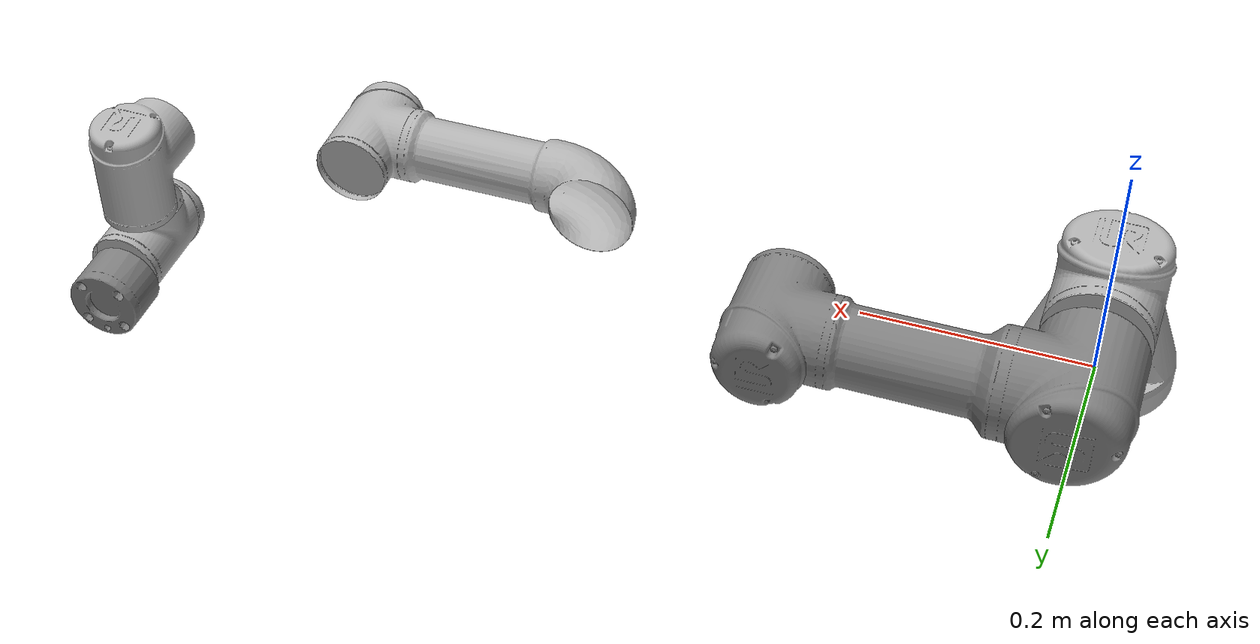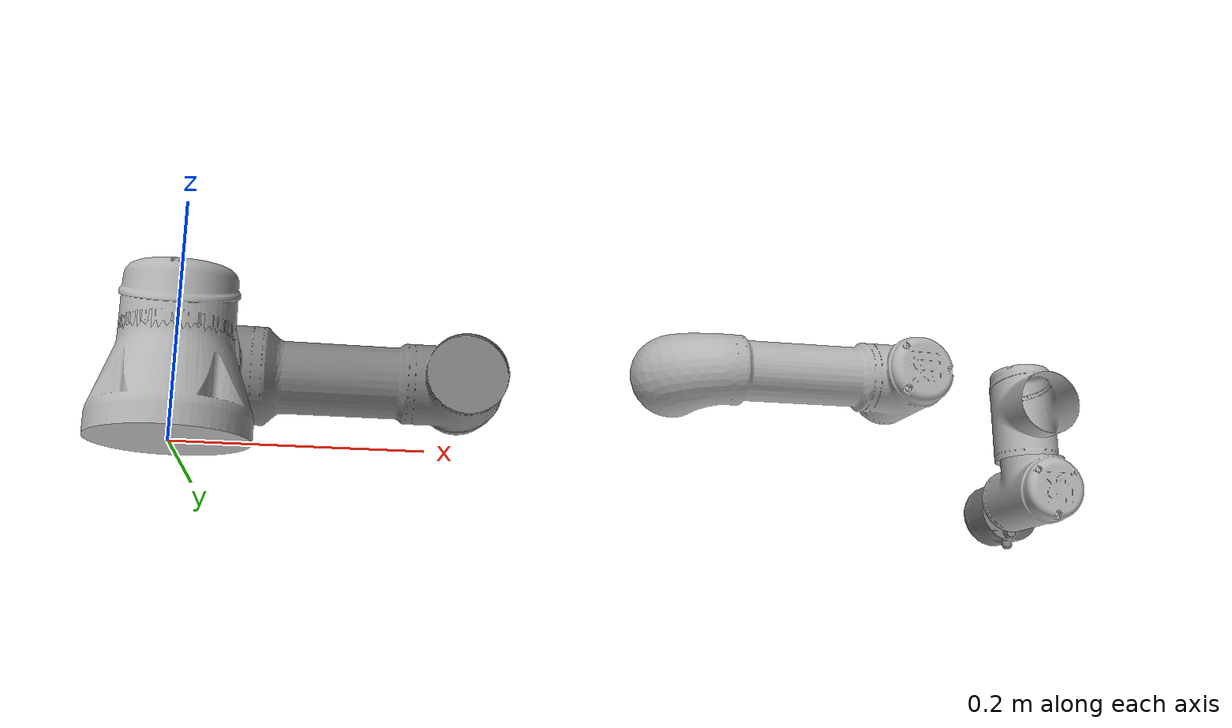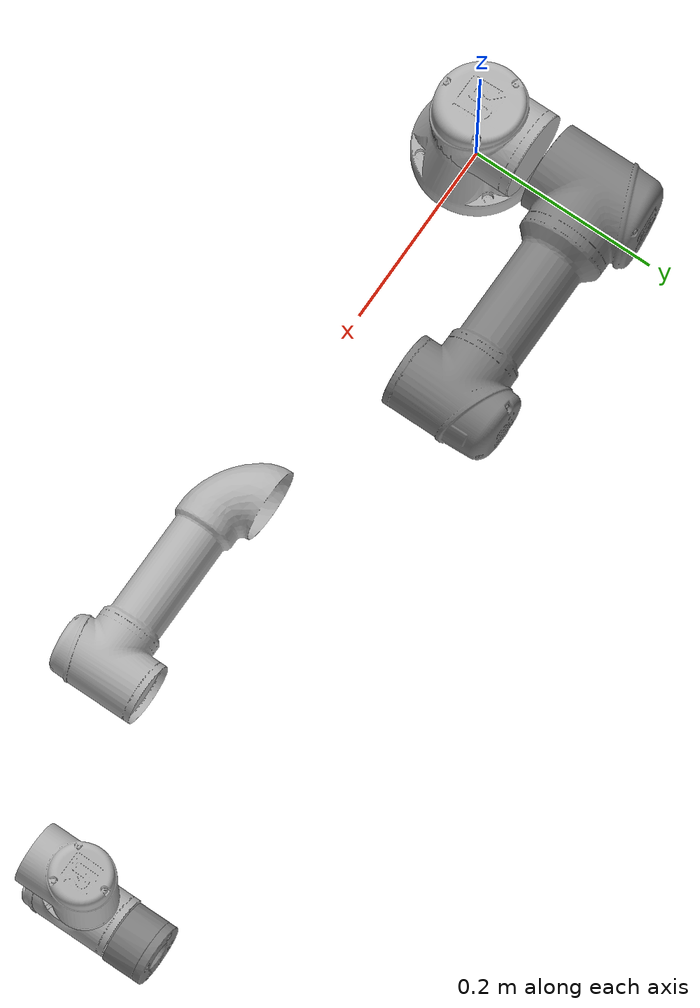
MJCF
<mujoco model="ur5_arm">
    <compiler angle="radian" />
    <actuator>
        <!-- Mujoco does not have velocity limit in actuator :( -->
        <velocity ctrllimited="true" ctrlrange="-3.14159265359 3.14159265359" kv="8.0" joint="shoulder_pan_joint" name="vel_shoulder_pan_joint"/>
        <velocity ctrllimited="true" ctrlrange="-3.14159265359 3.14159265359" kv="7.0" joint="shoulder_lift_joint"  name="vel_shoulder_lift_joint"/>
        <velocity ctrllimited="true" ctrlrange="-3.14159265359 3.14159265359" kv="6.0" joint="elbow_joint" name="vel_elbow_joint"/>
        <velocity ctrllimited="true" ctrlrange="-3.14159265359 3.14159265359" kv="4.0" joint="wrist_1_joint" name="vel_wrist_1_joint"/>
        <velocity ctrllimited="true" ctrlrange="-3.14159265359 3.14159265359" kv="2.0" joint="wrist_2_joint" name="vel_wrist_2_joint"/>
        <velocity ctrllimited="true" ctrlrange="-3.14159265359 3.14159265359" kv="1.0" joint="wrist_3_joint"  name="vel_wrist_3_joint"/>
    </actuator>
    <asset>
        <mesh name="base" file="meshes/base.stl" />
        <mesh name="shoulder" file="meshes/shoulder.stl" />
        <mesh name="upperarm" file="meshes/upperarm.stl" />
        <mesh name="forearm" file="meshes/forearm.stl" />
        <mesh name="wrist1" file="meshes/wrist1.stl" />
        <mesh name="wrist2" file="meshes/wrist2.stl" />
        <mesh name="wrist3" file="meshes/wrist3.stl" />
    </asset>

   <default>
        <joint damping="0.1" armature=".01"/>
   </default>

    <worldbody>
        <body name="base" pos="0 0 0">
            <geom name="base_geom" type="mesh" rgba="0.7 0.7 0.7 1" mesh="base" />
            <body name="shoulder_link" pos="0 0 0.089159">
                <inertial pos="0 0 0" mass="3.7" diaginertia="0.0102675 0.0102675 0.00666" />
                <joint name="shoulder_pan_joint" pos="0 0 0" axis="0 0 1" limited="true" range="-6.28319 6.28319" />
                <geom name="shoulder_geom" type="mesh" rgba="0.7 0.7 0.7 1" mesh="shoulder" />
                <body name="upper_arm_link" pos="0 0.13585 0" quat="0.707107 0 0.707107 0">
                    <inertial pos="0 0 0.28" mass="8.393" diaginertia="0.226891 0.226891 0.0151074" />
                    <joint name="shoulder_lift_joint" pos="0 0 0" axis="0 1 0" limited="true" range="-6.28319 6.28319" />
                    <geom name="upperarm_geom" type="mesh"  mesh="upperarm" />
                    <body name="forearm_link" pos="0 -0.1197 0.425">
                        <inertial pos="0 0 0.196125" mass="2.275" diaginertia="0.0312168 0.0312168 0.004095" />
                        <joint name="elbow_joint" pos="0 0 0" axis="0 1 0" limited="true" range="-3.14159 3.14159" />
                        <geom name="forearm_geom" type="mesh" rgba="0.7 0.7 0.7 1" mesh="forearm" />
                        <body name="wrist_1_link" pos="0 0 0.39225" quat="0.707107 0 0.707107 0">
                            <inertial pos="0 0.093 0" mass="1.219" diaginertia="0.0025599 0.0025599 0.0021942" />
                            <joint name="wrist_1_joint" pos="0 0 0" axis="0 1 0" limited="true" range="-6.28319 6.28319" />
                            <geom name="wrist1_geom" type="mesh" rgba="0.7 0.7 0.7 1" mesh="wrist1" />
                            <body name="wrist_2_link" pos="0 0.093 0">
                                <inertial pos="0 0 0.09465" mass="1.219" diaginertia="0.0025599 0.0025599 0.0021942" />
                                <joint name="wrist_2_joint" pos="0 0 0" axis="0 0 1" limited="true" range="-6.28319 6.28319" />
                                <geom name="wrist2_geom" type="mesh" rgba="0.7 0.7 0.7 1" mesh="wrist2" />
                                <body name="wrist_3_link" pos="0 0 0.09465">
                                    <inertial pos="0 0.0650884 0" quat="0.707107 0 0 0.707107" mass="0.1889" diaginertia="0.000132134 8.47648e-05 8.47648e-05" />
                                    <joint name="wrist_3_joint" pos="0 0 0" axis="0 1 0" limited="true" range="-6.28319 6.28319" />
                                    <geom name="wrist3_geom" type="mesh" mesh="wrist3" />
                                    <body name="right_hand" pos="0 0.0645 0.0" quat="0.5 -0.5 0.5 0.5">
                                        <!-- To add gripper -->
                                    </body>
                                </body>
                            </body>
                        </body>
                    </body>
                </body>
            </body>
        </body>
    </worldbody>
</mujoco>
